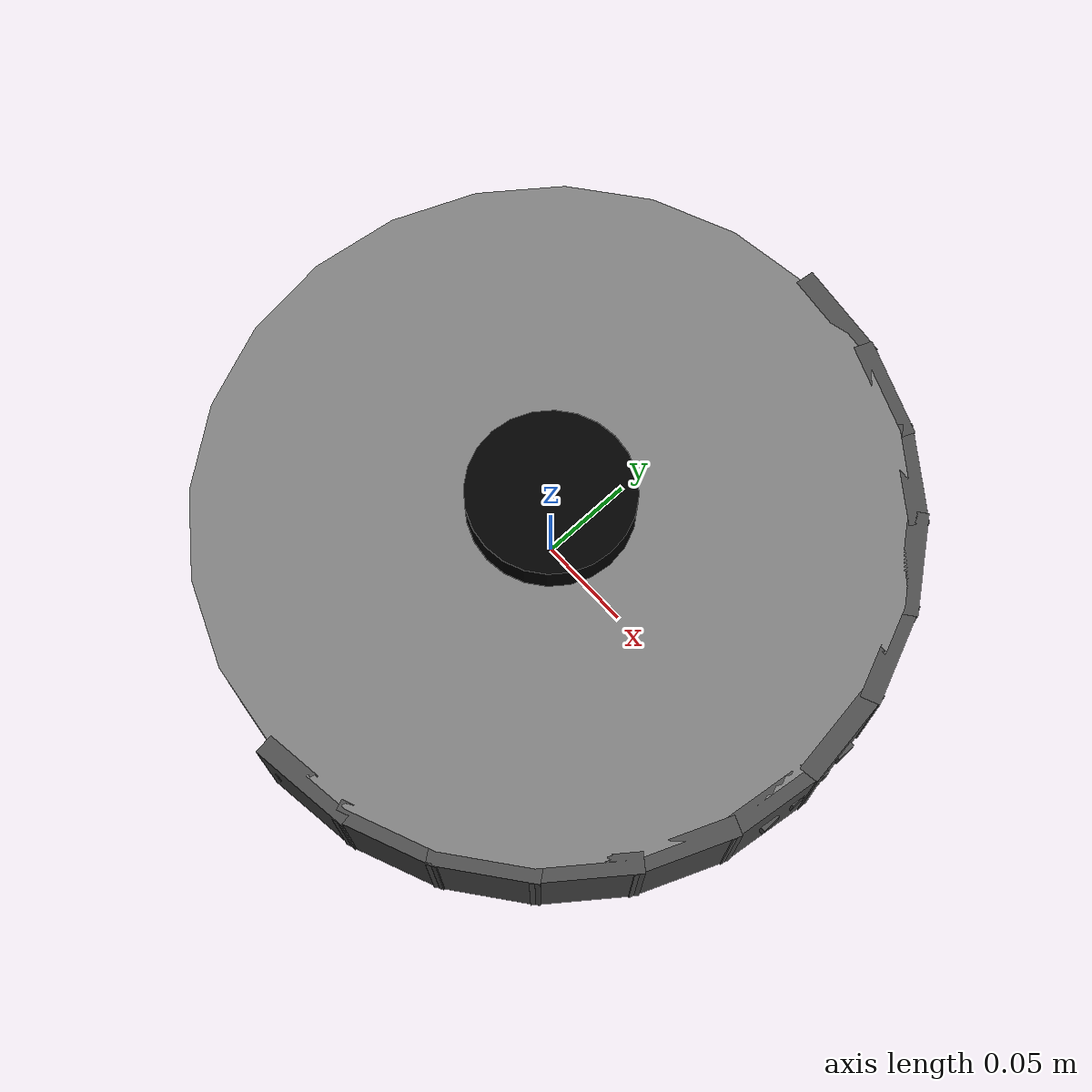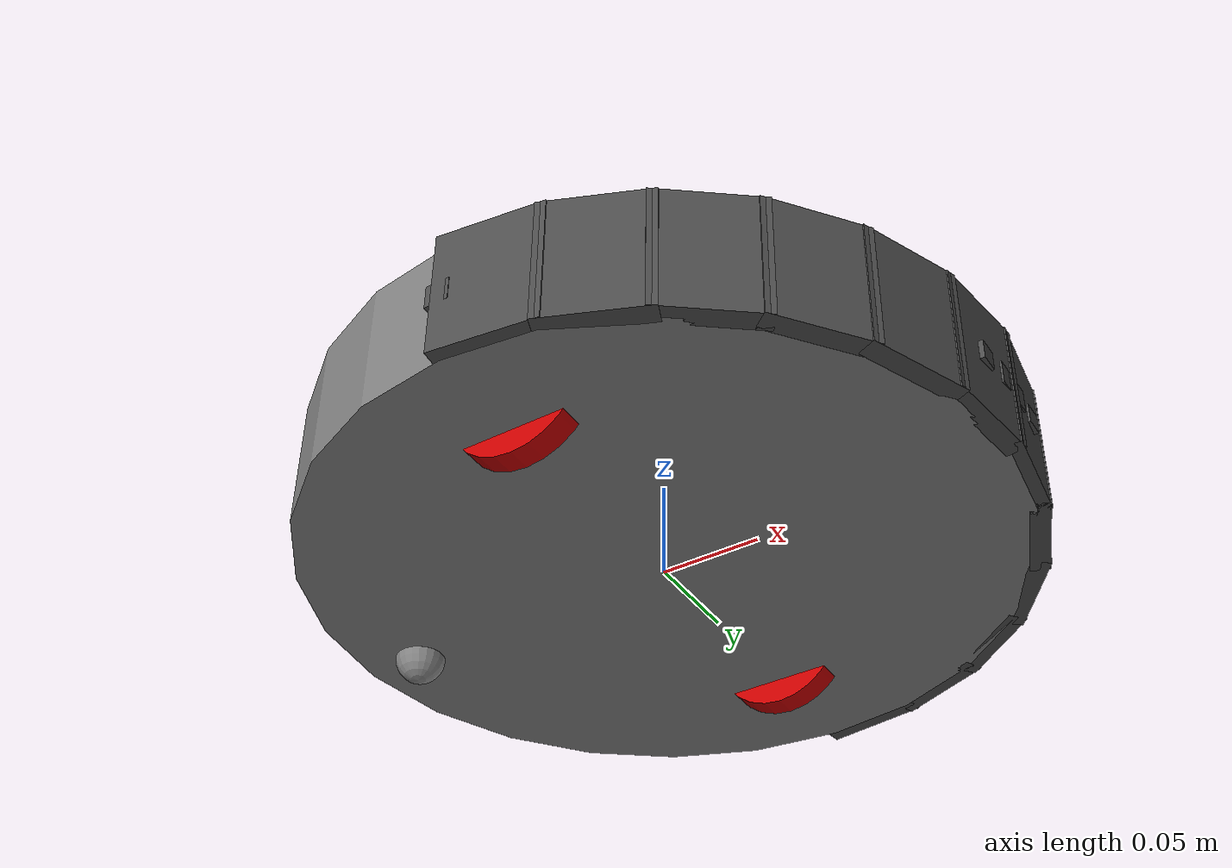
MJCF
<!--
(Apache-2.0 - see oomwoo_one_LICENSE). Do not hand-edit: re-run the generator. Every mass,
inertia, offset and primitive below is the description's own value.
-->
<mujoco model="oomwoo_one">
  <compiler angle="radian" autolimits="true"/>

  <default>
    <default class="oomwoo_one">
      <default class="visual">
        <geom contype="0" conaffinity="0" group="2"/>
      </default>
      <default class="collision">
        <geom group="3" rgba="0.6 0.1 0.1 0.35"/>
      </default>
      <default class="wheel_collision">
        <!-- Real driven tyres on a 2.93 kg robot: friction is what moves it. -->
        <geom type="cylinder" group="3" rgba="0.05 0.05 0.05 0.4" friction="1.0 0.005 0.0001"/>
      </default>
      <default class="wheel">
        <!-- axis 0 0 1 in the wheel's OWN frame, which the joint's rpy has already rotated to lie
             along the robot's y. This is the description's own axis, not a re-derived one. -->
        <joint axis="0 0 1" damping="0.001" armature="0.0005"/>
      </default>
    </default>
  </default>

  <asset>
    <material name="oomwoo_black" rgba="0.0 0.0 0.0 1"/>
    <material name="oomwoo_dark" rgba="0.3 0.3 0.3 1"/>
    <material name="oomwoo_grey" rgba="0.5 0.5 0.5 1"/>
    <material name="oomwoo_orange" rgba="1.0 0.4235 0.0392 1"/>
    <material name="oomwoo_red" rgba="0.8 0.0 0.0 1"/>
  </asset>

  <worldbody>
    <body name="base_link" childclass="oomwoo_one">
      <freejoint name="base_free"/>
      <inertial pos="0 0 0" mass="2.5" diaginertia="0.019952708333333333 0.019952708333333333 0.038062812499999994"/>
      <site name="base_imu" pos="0 0 0.03325" size="0.005" rgba="0 0 0 0"/>
      <!-- The scan plane, off the description's own scan_joint - not an assumption, unlike most
           other mobile models here. -->
      <site name="lidar" pos="0 0 0.0755" size="0.005" rgba="1 0 0 0.6"/>
        <geom class="visual" type="cylinder" size="0.1745 0.03325" material="oomwoo_grey" pos="0 0 0.03325"/>
        <geom class="visual" type="box" size="0.0261934 0.005 0.03325" material="oomwoo_dark" pos="0.17300712703194032 0.022776830248172442 0.03325" quat="0.6593455 0 0 0.75184"/>
        <geom class="visual" type="box" size="0.0261934 0.005 0.03325" material="oomwoo_dark" pos="0.16121696718435105 0.06677828608073039 0.03325" quat="0.5555699 0 0 0.8314698"/>
        <geom class="visual" type="box" size="0.0261934 0.005 0.03325" material="oomwoo_dark" pos="0.13844012808339132 0.10622890819477622 0.03325" quat="0.4422883 0 0 0.896873"/>
        <geom class="visual" type="box" size="0.0261934 0.005 0.03325" material="oomwoo_dark" pos="0.10622881499615142 0.1384401995972031 0.03325" quat="0.321439 0 0 0.9469303"/>
        <geom class="visual" type="box" size="0.0261934 0.005 0.03325" material="oomwoo_dark" pos="0.06677817754863016 0.16121701213979753 0.03325" quat="0.1950897 0 0 0.9807854"/>
        <geom class="visual" type="box" size="0.0261934 0.005 0.03325" material="oomwoo_dark" pos="0.02277671377888644 0.17300714236537948 0.03325" quat="0.06540249 0 0 0.997859"/>
        <geom class="visual" type="box" size="0.0261934 0.005 0.03325" material="oomwoo_dark" pos="0.02277671377888644 -0.17300714236537948 0.03325" quat="0.9978589 0 0 0.06540316"/>
        <geom class="visual" type="box" size="0.0261934 0.005 0.03325" material="oomwoo_dark" pos="0.06677817754863016 -0.16121701213979753 0.03325" quat="0.9807853 0 0 0.1950904"/>
        <geom class="visual" type="box" size="0.0261934 0.005 0.03325" material="oomwoo_dark" pos="0.10622881499615142 -0.1384401995972031 0.03325" quat="0.9469301 0 0 0.3214396"/>
        <geom class="visual" type="box" size="0.0261934 0.005 0.03325" material="oomwoo_dark" pos="0.13844012808339132 -0.10622890819477622 0.03325" quat="0.8968727 0 0 0.4422889"/>
        <geom class="visual" type="box" size="0.0261934 0.005 0.03325" material="oomwoo_dark" pos="0.16121696718435105 -0.06677828608073039 0.03325" quat="0.8314695 0 0 0.5555704"/>
        <geom class="visual" type="box" size="0.0261934 0.005 0.03325" material="oomwoo_dark" pos="0.17300712703194032 -0.022776830248172442 0.03325" quat="0.7518396 0 0 0.659346"/>
        <geom class="collision" type="cylinder" size="0.1745 0.03325" name="base_link_collision0" pos="0 0 0.03325"/>
        <geom class="collision" type="box" size="0.0261934 0.005 0.03325" name="base_link_collision1" pos="0.17300712703194032 0.022776830248172442 0.03325" quat="0.6593455 0 0 0.75184"/>
        <geom class="collision" type="box" size="0.0261934 0.005 0.03325" name="base_link_collision2" pos="0.16121696718435105 0.06677828608073039 0.03325" quat="0.5555699 0 0 0.8314698"/>
        <geom class="collision" type="box" size="0.0261934 0.005 0.03325" name="base_link_collision3" pos="0.13844012808339132 0.10622890819477622 0.03325" quat="0.4422883 0 0 0.896873"/>
        <geom class="collision" type="box" size="0.0261934 0.005 0.03325" name="base_link_collision4" pos="0.10622881499615142 0.1384401995972031 0.03325" quat="0.321439 0 0 0.9469303"/>
        <geom class="collision" type="box" size="0.0261934 0.005 0.03325" name="base_link_collision5" pos="0.06677817754863016 0.16121701213979753 0.03325" quat="0.1950897 0 0 0.9807854"/>
        <geom class="collision" type="box" size="0.0261934 0.005 0.03325" name="base_link_collision6" pos="0.02277671377888644 0.17300714236537948 0.03325" quat="0.06540249 0 0 0.997859"/>
        <geom class="collision" type="box" size="0.0261934 0.005 0.03325" name="base_link_collision7" pos="0.02277671377888644 -0.17300714236537948 0.03325" quat="0.9978589 0 0 0.06540316"/>
        <geom class="collision" type="box" size="0.0261934 0.005 0.03325" name="base_link_collision8" pos="0.06677817754863016 -0.16121701213979753 0.03325" quat="0.9807853 0 0 0.1950904"/>
        <geom class="collision" type="box" size="0.0261934 0.005 0.03325" name="base_link_collision9" pos="0.10622881499615142 -0.1384401995972031 0.03325" quat="0.9469301 0 0 0.3214396"/>
        <geom class="collision" type="box" size="0.0261934 0.005 0.03325" name="base_link_collision10" pos="0.13844012808339132 -0.10622890819477622 0.03325" quat="0.8968727 0 0 0.4422889"/>
        <geom class="collision" type="box" size="0.0261934 0.005 0.03325" name="base_link_collision11" pos="0.16121696718435105 -0.06677828608073039 0.03325" quat="0.8314695 0 0 0.5555704"/>
        <geom class="collision" type="box" size="0.0261934 0.005 0.03325" name="base_link_collision12" pos="0.17300712703194032 -0.022776830248172442 0.03325" quat="0.7518396 0 0 0.659346"/>
        <body name="caster_link" pos="-0.1445 0 0.0">
          <inertial pos="0 0 0" mass="0.05" diaginertia="3.1250000000000006e-06 3.1250000000000006e-06 3.1250000000000006e-06"/>
          <geom class="visual" type="sphere" size="0.0125" material="oomwoo_grey" pos="0 0 0"/>
          <geom class="collision" type="sphere" size="0.0125" name="caster_link_collision0" pos="0 0 0"/>
        </body>
        <body name="base_scan" pos="0.0 0 0.0755">
          <inertial pos="0 0 0" mass="0.15" diaginertia="6.8634375e-05 6.8634375e-05 0.00012916875000000002"/>
          <geom class="visual" type="cylinder" size="0.0415 0.009" material="oomwoo_black" pos="0 0 0"/>
          <geom class="collision" type="cylinder" size="0.0415 0.009" name="base_scan_collision0" pos="0 0 0"/>
        </body>
        <body name="range_left_link" pos="0.0 0.1745 0.03325" quat="0.7071065 0 0 0.707107">
          <inertial pos="0 0 0" mass="0.005" diaginertia="1.2e-07 1.2e-07 1.2e-07"/>
          <geom class="visual" type="box" size="0.006 0.006 0.006" material="oomwoo_dark" pos="0 0 0"/>
        </body>
        <body name="range_right_link" pos="0.0 -0.1745 0.03325" quat="0.7071065 0 0 -0.707107">
          <inertial pos="0 0 0" mass="0.005" diaginertia="1.2e-07 1.2e-07 1.2e-07"/>
          <geom class="visual" type="box" size="0.006 0.006 0.006" material="oomwoo_dark" pos="0 0 0"/>
        </body>
        <body name="tof_front_link" pos="0.1745 0 0.03325">
          <inertial pos="0 0 0" mass="0.005" diaginertia="3.0000000000000004e-07 1.2e-07 3.0000000000000004e-07"/>
          <geom class="visual" type="box" size="0.006 0.012 0.006" material="oomwoo_dark" pos="0 0 0"/>
        </body>
        <body name="camera_left_link" pos="0.1745 0.025 0.03325">
          <inertial pos="0 0 0" mass="0.005" diaginertia="8.333333333333335e-08 8.333333333333335e-08 8.333333333333335e-08"/>
          <geom class="visual" type="box" size="0.005 0.005 0.005" material="oomwoo_dark" pos="0 0 0"/>
        </body>
        <body name="camera_right_link" pos="0.1745 -0.025 0.03325">
          <inertial pos="0 0 0" mass="0.005" diaginertia="8.333333333333335e-08 8.333333333333335e-08 8.333333333333335e-08"/>
          <geom class="visual" type="box" size="0.005 0.005 0.005" material="oomwoo_dark" pos="0 0 0"/>
        </body>
        <body name="imu_link" pos="0.0 0.0 0.03325">
          <inertial pos="0 0 0" mass="0.005" diaginertia="8.333333333333335e-08 8.333333333333335e-08 8.333333333333335e-08"/>
          <geom class="visual" type="box" size="0.005 0.005 0.005" material="oomwoo_orange" pos="0 0 0"/>
        </body>
        <body name="wheel_left_link" pos="0 0.1175 0.021500000000000002" quat="0.7071068 -0.7071068 0 0">
          <inertial pos="0 0 0" mass="0.1" diaginertia="3.010000000000001e-05 3.010000000000001e-05 5.780000000000001e-05"/>
          <joint name="wheel_left_joint" class="wheel"/>
          <geom class="visual" type="cylinder" size="0.034 0.006" material="oomwoo_red" pos="0 0 0"/>
          <geom class="wheel_collision" name="wheel_left_tyre"
                size="0.034 0.006"/>
        </body>
        <body name="wheel_right_link" pos="0 -0.1175 0.021500000000000002" quat="0.7071068 -0.7071068 0 0">
          <inertial pos="0 0 0" mass="0.1" diaginertia="3.010000000000001e-05 3.010000000000001e-05 5.780000000000001e-05"/>
          <joint name="wheel_right_joint" class="wheel"/>
          <geom class="visual" type="cylinder" size="0.034 0.006" material="oomwoo_red" pos="0 0 0"/>
          <geom class="wheel_collision" name="wheel_right_tyre"
                size="0.034 0.006"/>
        </body>
    </body>
  </worldbody>

  <actuator>
    <velocity name="wheel_left_motor" joint="wheel_left_joint" kv="0.25" ctrlrange="-15 15" forcerange="-0.5 0.5"/>
    <velocity name="wheel_right_motor" joint="wheel_right_joint" kv="0.25" ctrlrange="-15 15" forcerange="-0.5 0.5"/>
  </actuator>

  <keyframe>
    <!-- base_link rides at wheel radius minus the wheel-centre height, which is the description's
         own floor_clearance. Spawn a hair above so it settles rather than starting interpenetrated. -->
    <key name="home" qpos="0 0 0.0125 1 0 0 0  0 0"/>
  </keyframe>
</mujoco>
